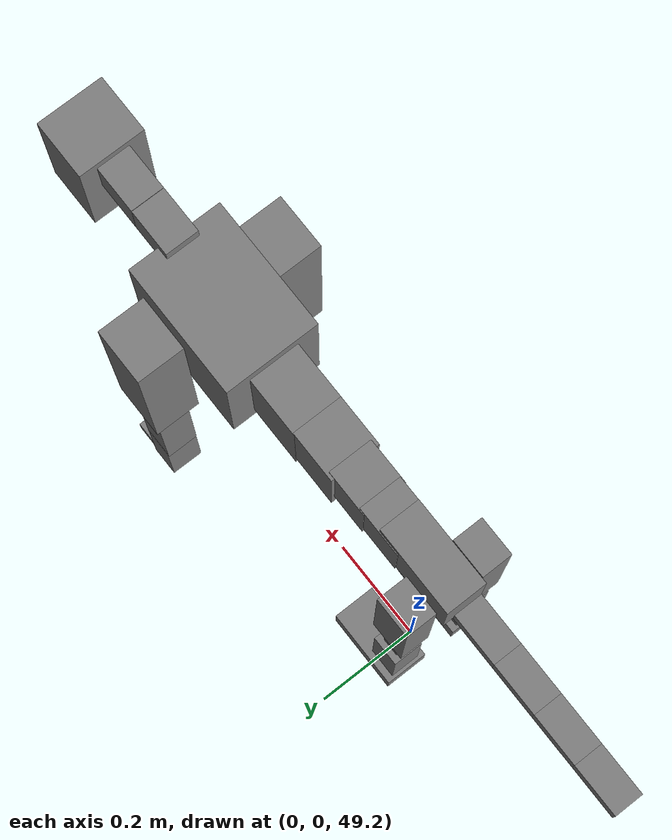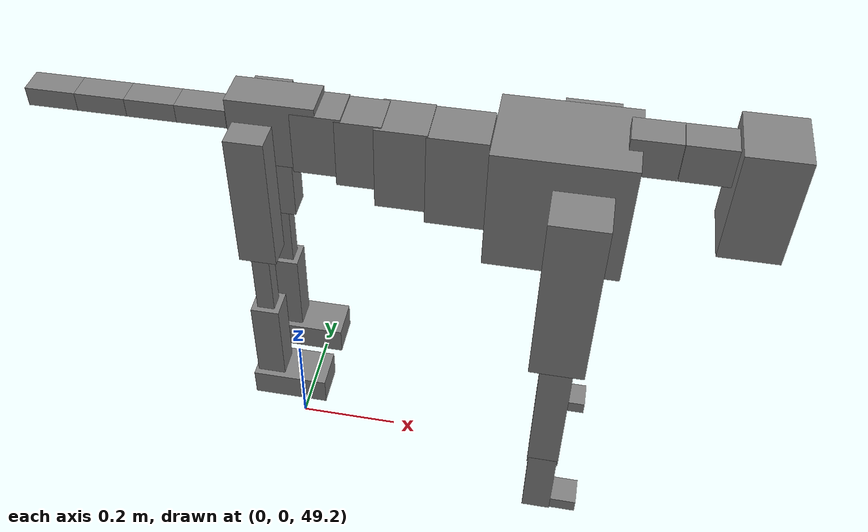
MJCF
<mujoco model="dog">

    <default>
        <joint armature="0.02" stiffness="1" damping="0.2" limited="true"/>
        <geom condim="3" friction="1 0.05 0.05" margin="0.01"/>
        <motor ctrllimited="true" ctrlrange="-1.0 1.0" forcelimited="true" gear="50"/>
    </default>

    <compiler inertiafromgeom="true" angle="radian"/>

    <option timestep="0.016" iterations="50" tolerance="1e-10" solver="Newton" jacobian="dense" cone="pyramidal"/>

    <size nconmax="20000" njmax="60000" nstack="5000000"/>
    <visual>
        <map force="0.1" zfar="30"/>
        <rgba haze="0.15 0.25 0.35 1"/>
        <quality shadowsize="2048"/>
        <global offwidth="800" offheight="800"/>
    </visual>

    <asset>
        <texture type="skybox" builtin="gradient" rgb1="0.3 0.5 0.7" rgb2="0 0 0" width="512" height="512"/>
        <texture name="texplane" type="2d" builtin="checker" rgb1=".2 .3 .4" rgb2=".1 0.15 0.2" width="512" height="512"
                 mark="cross" markrgb=".8 .8 .8"/>
        <texture name="texgeom" type="cube" builtin="flat" mark="cross" width="127" height="1278" rgb1="0.8 0.6 0.4"
                 rgb2="0.8 0.6 0.4" markrgb="1 1 1" random="0.01"/>

        <material name="matplane" reflectance="0.3" texture="texplane" texrepeat="1 1" texuniform="true"/>
        <material name="matgeom" texture="texgeom" texuniform="true" rgba="0.8 0.6 .4 1"/>
    </asset>

    <worldbody>
        <geom name="floor" pos="0 0 0" size="0 0 .25" type="plane" material="matplane" condim="3"/>

        <light directional="false" diffuse=".2 .2 .2" specular="0 0 0" pos="0 0 5" dir="0 0 -1" castshadow="false"/>
        <light mode="targetbodycom" target="torso" directional="false" diffuse=".8 .8 .8" specular="0.3 0.3 0.3"
               pos="0 0 4.0" dir="0 0 -1"/>

        <body name="root" pos="0 0 50">
            <freejoint name="root_1"/>
            <geom type="box" pos="0 0 -0.02" size="0.0774  0.0358  0.063" density="2030"/>

            <body name="spine1" pos="0.054 0 0">
                <joint name="spine1_y" axis="0 1 0" range="0 0.7" limited="true"/>
                <geom type="box" pos="0.02375 0 -0.03" size="0.04375  0.0375  0.05985" density="2030"/>

                <body name="spine2" pos="0.0612 0 0">
                    <joint name="spine2_y" axis="0 1 0" range="-0.15 0.15" limited="true"/>
                    <geom type="box" pos="0.03555  0  -0.04" size="0.04055  0.039  0.06615" density="2030"/>

                    <body name="spine3" pos="0.0730 0 0">
                        <joint name="spine3_y" axis="0 1 0" range="-0.15 0.15" limited="true"/>
                        <geom type="box" pos="0.03555  0  -0.057" size="0.04555  0.0445  0.081" density="2030"/>

                        <body name="spine4" pos="0.0780 0 0">
                            <joint name="spine4_y" axis="0 1 0" range="-0.15 0.15" limited="true"/>
                            <geom type="box" pos="0.05265  0  -0.07" size="0.05265  0.045  0.09135" density="2030"/>

                            <body name="torso" pos="0.1082 0 0">
                                <joint name="torso_y" axis="0 1 0" range="-0.15 0.15" limited="true"/>
                                <geom type="box" pos="0.11925  0  -0.085" size="0.11925  0.085  0.11745"
                                      density="2030"/>

                                <body name="neck1" pos="0.2160  0   0.0180">
                                    <joint name="neck1_y" axis="0 1 0" range="-1.2  -1" limited="true"/>
                                    <geom type="box" pos="0.0423  0  0" size="0.0423  0.03  0.036" density="2325"/>

                                    <body name="neck2" pos="0.0853  0  0">
                                        <joint name="neck2_y" axis="0 1 0" range="0.1  0" limited="true"/>
                                        <geom type="box" pos="0.0423  0  0" size="0.0423  0.03  0.036" density="2325"/>

                                        <body name="head" pos="0.0853  0  0">
                                            <joint name="head_y" axis="0 1 0" range="-0.3  -0.2" limited="true"/>
                                            <geom type="box" pos="0.0531  0  -0.055" size="0.0531  0.06  0.1044"
                                                  density="4030"/>

                                        </body>
                                    </body>
                                </body>

                                <body name="front_shoulder" pos="0.156  0   -0.0480">
                                    <joint name="front_shoulder_y" axis="0 1 0" range="-1 1.5" limited="true"/>
                                    <geom type="box" pos="0 0.13 -0.1468" size="0.0501  0.0428  0.1735" density="1158"/>
                                    <geom type="box" pos="0 -0.13 -0.1468" size="0.0501  0.0428  0.1735"
                                          density="1158"/>

                                    <body name="front_elbow" pos="0  0  -0.2937">
                                        <joint name="front_elbow_y" axis="0 1 0" range="-2 0" limited="true"/>
                                        <geom type="box" pos="0 0.13 -0.1528" size="0.0301  0.0308  0.1528"
                                              density="1081"/>
                                        <geom type="box" pos="0 -0.13 -0.1528" size="0.0301  0.0308  0.1528"
                                              density="1081"/>

                                        <body name="front_wrist" pos="0  0  -0.3056">
                                            <joint name="front_wrist_y" axis="0 1 0" range="-0.2 0" limited="true"/>
                                            <geom type="box" pos="0 0.13 -0.0671" size="0.0279  0.0311  0.0803"
                                                  density="1664"/>
                                            <geom type="box" pos="0 -0.13 -0.0671" size="0.0279  0.0311  0.0803"
                                                  density="1664"/>

                                            <body name="front_finger_end" pos="0  0  -0.1343">
                                                <joint name="front_finger_y" axis="0 1 0" range="-0.4 1"
                                                       limited="true"/>
                                                <geom type="box" pos="0.0280  0.13  0.0008"
                                                      size="0.0513  0.0280  0.0142" density="1515"/>
                                                <geom type="box" pos="0.0280  -0.13  0.0008"
                                                      size="0.0513  0.0280  0.0142" density="1515"/>

                                            </body>

                                        </body>
                                    </body>
                                </body>

                            </body>
                        </body>
                    </body>
                </body>
            </body>

            <body name="back_hip" pos="-0.03 0 -0.018">
                <joint name="back_hip_y" axis="0 1 0" range="-1.5 0.3" limited="true"/>
                <geom type="box" pos="0 0.07 -0.1107" size="0.0346  0.0272  0.1335" density="1154"/>
                <geom type="box" pos="0 -0.07 -0.1107" size="0.0346  0.0272  0.1335" density="1154"/>

                <body name="back_knee" pos="0  0  -0.2214">
                    <joint name="back_knee_y" axis="0 1 0" range="0 2.8" limited="true"/>
                    <geom type="box" pos="0 0.07 -0.0825" size="0.0166  0.0163  0.0980" density="1227"/>
                    <geom type="box" pos="0 -0.07 -0.0825" size="0.0166  0.0163  0.0980" density="1227"/>

                    <body name="back_ankle" pos="0  0  -0.1650">
                        <joint name="back_ankle_y" axis="0 1 0" range="-2.2 0" limited="true"/>
                        <geom type="box" pos="0 0.07 -0.0874" size="0.0273  0.0273  0.0987" density="1284"/>
                        <geom type="box" pos="0 -0.07 -0.0874" size="0.0273  0.0273  0.0987" density="1284"/>

                        <body name="back_toe_end" pos="0  0  -0.1748">
                            <joint name="back_toe_y" axis="0 1 0" range="-0.4 1" limited="true"/>
                            <geom type="box" pos="0.0397  0.07  -0.0127" size="0.0729  0.0397  0.0277" density="1515"/>
                            <geom type="box" pos="0.0397  -0.07  -0.0127" size="0.0729  0.0397  0.0277" density="1515"/>

                        </body>
                    </body>
                </body>
            </body>

            <body name="tail1" pos="-0.074 0 -0.006">
                <joint name="tail1_y" axis="0 1 0" range="-0.2 0.2" limited="true"/>
                <geom type="box" pos="-0.0536  0  0" size="0.045  0.025  0.0175" density="1587"/>

                <body name="tail2" pos="-0.09 0 0">
                    <joint name="tail2_y" axis="0 1 0" range="-0.2 0.2" limited="true"/>
                    <geom type="box" pos="-0.0536  0  0" size="0.045  0.025  0.0175" density="1587"/>

                    <body name="tail3" pos="-0.09 0 0">
                        <joint name="tail3_y" axis="0 1 0" range="-0.2 0.2" limited="true"/>
                        <geom type="box" pos="-0.0536  0  0" size="0.045  0.025  0.0175" density="1587"/>

                        <body name="tail4" pos="-0.09 0 0">
                            <joint name="tail4_y" axis="0 1 0" range="-0.2 0.2" limited="true"/>
                            <geom type="box" pos="-0.0536  0  0" size="0.045  0.025  0.0175" density="1587"/>

                        </body>
                    </body>
                </body>
            </body>
        </body>
    </worldbody>

    <actuator>
        <motor joint="spine1_y" forcerange="-150 150     "/>
        <motor joint="spine2_y" forcerange="-150 150     "/>
        <motor joint="spine3_y" forcerange="-150 150     "/>
        <motor joint="spine4_y" forcerange="-150 150     "/>
        <motor joint="torso_y" forcerange="-150 150     "/>
        <motor joint="neck1_y" forcerange="-100 100       "/>
        <motor joint="neck2_y" forcerange="-100 100       "/>
        <motor joint="head_y" forcerange="-150 150       "/>
        <motor joint="front_shoulder_y" forcerange="-191.84 193.71"/>
        <motor joint="front_elbow_y" forcerange="-196.86 127.03"/>
        <motor joint="front_wrist_y" forcerange="-131.69 116.75"/>
        <motor joint="front_finger_y" forcerange="-82.22 27.11"/>
        <motor joint="back_hip_y" forcerange="-333.51 228.59"/>
        <motor joint="back_knee_y" forcerange="-211.18 226.30"/>
        <motor joint="back_angle_y" forcerange="-225.15 111.68"/>
        <motor joint="back_toe_y" forcerange="-122.26 115.68"/>
        <motor joint="tail1_y" forcerange="-50 50     "/>
        <motor joint="tail2_y" forcerange="-50 50     "/>
        <motor joint="tail3_y" forcerange="-50 50     "/>
        <motor joint="tail4_y" forcerange="-50 50     "/>
    </actuator>
</mujoco>
